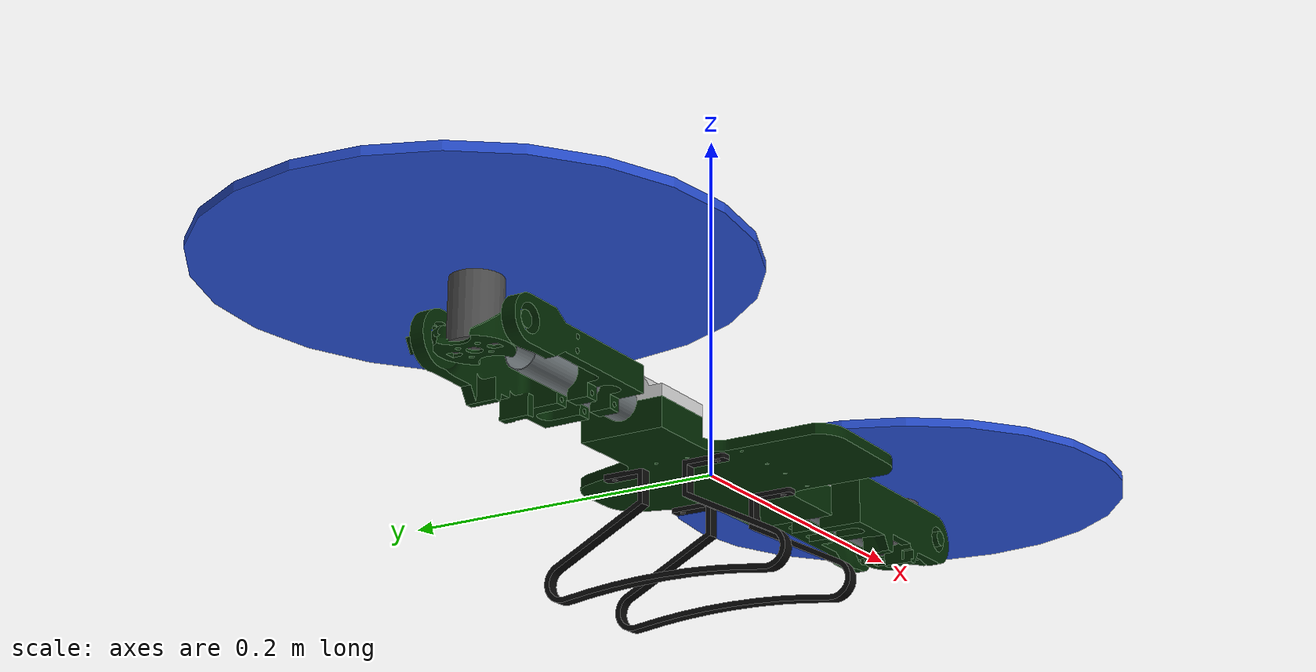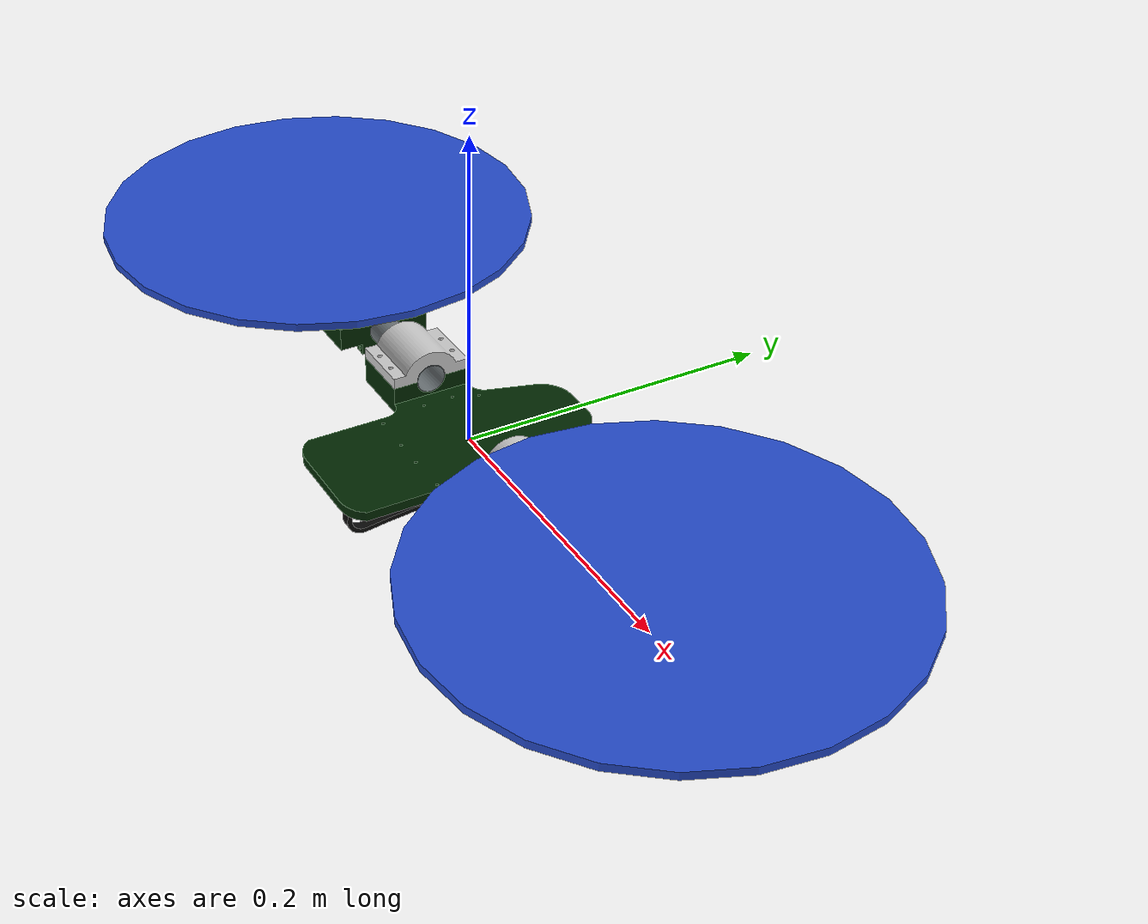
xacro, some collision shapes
<?xml version="1.0"?>
<robot name="bicopter" xmlns:xacro="http://ros.org/wiki/xacro">

  <!-- Properties -->
  <xacro:property name="namespace" value="bicopter" />
  <xacro:property name="rotor_velocity_slowdown_sim" value="10" />
  <xacro:property name="mesh_scale" value="1 1 1"/>
  <xacro:property name="mesh" value="propeller"/>  <!-- "propeller" -->
  <xacro:property name="mesh_scale_prop" value=".12 .12 .12"/>
  <xacro:property name="body_width" value="0.3" />
  <xacro:property name="body_height" value="0.17" />
  <xacro:property name="mass_rotor" value="0.005" /> <!-- [kg] -->
  <xacro:property name="arm_length" value="0.17" />
  <xacro:property name="rotor_offset_top" value="0.032" />
  <xacro:property name="radius_rotor" value="0.14" />
  <xacro:property name="motor_constant" value="2.39e-05" /> <!-- [kg.m/s^2] -->
  <xacro:property name="moment_constant" value="0.016" />
  <xacro:property name="time_constant_up" value="0.15" />
  <xacro:property name="time_constant_down" value="0.15" />
  <xacro:property name="max_rot_velocity" value="770" /> <!-- [rad/s] -->
  <xacro:property name="rotor_drag_coefficient" value="1.3858e-06" />
  <xacro:property name="rolling_moment_coefficient" value="0.000001" />
  <xacro:property name="color" value="DarkGrey" />

  <!-- Included URDF Files -->
  <xacro:include filename="$(find bicopter_sim)/bicopter_description/urdf/structure_base.xacro" />

   <!-- inertia of a single rotor, assuming it is a cuboid. Height=3mm, width=15mm -->
  <xacro:property name="rotor_inertia">
    <inertia
    ixx="${1/12 * mass_rotor * (0.015 * 0.015 + 0.003 * 0.003) * rotor_velocity_slowdown_sim}"
    iyy="${1/12 * mass_rotor * (4 * radius_rotor * radius_rotor + 0.003 * 0.003) * rotor_velocity_slowdown_sim}"
    izz="${1/12 * mass_rotor * (4 * radius_rotor * radius_rotor + 0.015 * 0.015) * rotor_velocity_slowdown_sim}"
    ixy="0.0" ixz="0.0"  iyz="0.0" /> <!-- [kg.m^2] [kg.m^2] [kg.m^2] [kg.m^2] [kg.m^2] [kg.m^2] -->

  </xacro:property>

  <xacro:bicopter_base robot_namespace="${namespace}" />

   <!-- CRIACAO DOS MANCAIS E SUAS JUNTAS (JOINTS) -->

  <xacro:mancal prefix="right" reflect="-1" />
  <xacro:mancal prefix="left" reflect="1" />

  <!-- CRIACAO DOS TUBE ARM E SUAS JUNTAS (JOINTS) -->

  <xacro:tube_arm prefix="right" reflect="-1" />
  <xacro:tube_arm prefix="left" reflect="1" />

  <!-- CRIACAO DOS ARM E SUAS JUNTAS (JOINTS) -->

   <xacro:arm prefix="right" releve="0" reflect="-1" />
   <xacro:arm prefix="left" releve="1" reflect="1" />

  <!-- CRIACAO DOS ARM2 E SUAS JUNTAS (JOINTS) -->

   <xacro:arm2 prefix="right" releve="0" reflect="-1" />
   <xacro:arm2 prefix="left" releve="1" reflect="1" />

   <!-- CRIACAO DOS LEG E SUAS JUNTAS (JOINTS) -->

   <xacro:leg prefix="right" reflect="-1" />
   <xacro:leg prefix="left" reflect="1" />

   <!-- CRIACAO DOS TILT E SUAS JUNTAS (JOINTS) -->

   <xacro:tilt prefix="right" reflect="-1" />
   <xacro:tilt prefix="left" reflect="1" />

   <!-- CRIACAO DOS STATOR E SUAS JUNTAS (JOINTS) -->

   <xacro:stator prefix="right" reflect="-1" parent="right_tilt"/>
   <xacro:stator prefix="left"  reflect="1" parent="left_tilt" />

   <!-- CRIACAO DOS ROTORES -->

  <xacro:vertical_rotor
    robot_namespace="${namespace}"
    suffix="front"
    direction="ccw"
    motor_constant="${motor_constant}"
    moment_constant="${moment_constant}"
    parent="left_tilt"
    mass_rotor="${mass_rotor}"
    radius_rotor="${radius_rotor}"
    time_constant_up="${time_constant_up}"
    time_constant_down="${time_constant_down}"
    max_rot_velocity="${max_rot_velocity}"
    motor_number="0"
    rotor_drag_coefficient="${rotor_drag_coefficient}"
    rolling_moment_coefficient="${rolling_moment_coefficient}"
    mesh ="propeller"
    mesh_scale="${mesh_scale_prop}"
    color="Blue">
    <origin xyz="0 0 ${rotor_offset_top}" rpy="0 0 0" />
    <xacro:insert_block name="rotor_inertia" />
  </xacro:vertical_rotor>

  <xacro:vertical_rotor
    robot_namespace="${namespace}"
    suffix="front"
    direction="cw"
    motor_constant="${motor_constant}"
    moment_constant="${moment_constant}"
    parent="right_tilt"
    mass_rotor="${mass_rotor}"
    radius_rotor="${radius_rotor}"
    time_constant_up="${time_constant_up}"
    time_constant_down="${time_constant_down}"
    max_rot_velocity="${max_rot_velocity}"
    motor_number="1"
    rotor_drag_coefficient="${rotor_drag_coefficient}"
    rolling_moment_coefficient="${rolling_moment_coefficient}"
    mesh ="propeller"
    mesh_scale="${mesh_scale_prop}"
    color="Blue">
    <origin xyz="0 0 ${rotor_offset_top}" rpy="0 0 0" />
    <xacro:insert_block name="rotor_inertia" />
  </xacro:vertical_rotor>

	   <!-- CONECTANDO ROS TO GAZEBO -->

  <gazebo>
    <plugin name="gazebo_ros_control" filename="libgazebo_ros_control.so">
     <robotNamespace>/</robotNamespace>
	   </plugin>
   </gazebo>

 </robot>

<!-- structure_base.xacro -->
<robot xmlns:xacro="http://ros.org/wiki/xacro">

  <xacro:property name="pi" value="3.1415" />
   <material name="blue">
    <color rgba="0 0 0.8 1"/>
  </material>

  <!-- MACRO PARA CRIACAO DO DEFAULT INERTIAL -->

  <xacro:macro name="default_inertial" params="mass ixx ixy ixz iyy iyz izz">
    <inertial>
      <mass value="${mass}" />
      <inertia ixx="${ixx}" ixy="${ixy}" ixz="${ixz}" iyy="${iyy}" iyz="${iyz}" izz="${izz}" />
    </inertial>
  </xacro:macro>

  <!-- MACRO PARA CRIACAO DA BASE DO BICOPTER -->
  <xacro:macro name="bicopter_base" params="robot_namespace">
  <link name="base_link">
  </link>

  <joint name="base_joint" type="fixed">
    <parent link="base_link"/>
    <child link="base_link_inertial"/>
  </joint>

  <link name="base_link_inertial">

    <visual>
      <origin rpy="0 0 0" xyz="0 0 0"/>
      <geometry>
        <mesh filename="package://bicopter_sim/bicopter_description/meshes/middle.dae"/>
      </geometry>
    </visual>

    <collision>
      <origin rpy="0 0 0" xyz="0 0 0"/>
      <geometry>
        <box size="0.178 0.17 0.015"/>
      </geometry>
    </collision>

    <xacro:default_inertial mass="0.1419" ixx="0.1942e-6" ixy="0" ixz="0" iyy="0.3362e-6" iyz="-0.0021e-6" izz="0.5259e-6"/>

  </link>

  <!-- attach multirotor_base_plugin to the base_link -->
  <gazebo>
    <plugin filename="librotors_gazebo_multirotor_base_plugin.so" name="rosbag">
      <robotNamespace>${robot_namespace}</robotNamespace>
        <linkName>base_link</linkName>
        <rotorVelocitySlowdownSim>${rotor_velocity_slowdown_sim}</rotorVelocitySlowdownSim>
    </plugin>
  </gazebo>

  </xacro:macro>

  <!-- MACRO PARA CRIACAO DO MANCAL -->
  <xacro:macro name="mancal" params="prefix reflect">
    <link name="${prefix}_mancal">
      <visual>
        <geometry>
         <mesh filename="package://bicopter_sim/bicopter_description/meshes/mancal_up.dae"/>
        </geometry>
        <origin rpy="0 0 ${pi/2}" xyz="0 0 0"/>
      </visual>
      <collision>
        <geometry>
          <box size="0.04 0.05 0.02"/>
        </geometry>
        <origin rpy="0 0 0" xyz="0 0 0.010"/>
      </collision>
      <xacro:default_inertial mass="0.01971" ixx="3.0541067e-09" ixy="-1.22135e-11" ixz="2.8446e-12" iyy="3.361632324e-07" iyz="-2.06933e-09" izz="5.258915527e-07"/>
    </link>

    <joint name="base_to_${prefix}_mancal" type="fixed">
      <parent link="base_link"/>
      <child link="${prefix}_mancal"/>
      <origin xyz="${reflect*0.07} 0 0.0142" />
    </joint>
  </xacro:macro>

  <!-- MACRO PARA CRIACAO DO TUBE ARM -->

  <xacro:macro name="tube_arm" params="prefix reflect">
    <link name="${prefix}_tube_arm">
      <visual>
        <geometry>
         <mesh filename="package://bicopter_sim/bicopter_description/meshes/tube_arm.dae"/>
        </geometry>
        <origin rpy="0 0 0" xyz="0 0 0"/>
      </visual>
      <collision>
      <geometry>
        <cylinder length="0.12" radius="0.01"/>
      </geometry>
       <origin rpy="0 ${pi/2} 0" xyz="0 0 0"/>
    </collision>
      <xacro:default_inertial mass="0.03022" ixx="1.7960983e-09" ixy="-2.3981262e-09" ixz="-2.08e-14" iyy="2.15995621e-08" iyz="-7.0e-16" izz="2.17520676e-08"/>
    </link>

    <joint name="base_to_${prefix}_tube_arm" type="fixed">
      <parent link="base_link"/>
      <child link="${prefix}_tube_arm"/>
      <origin xyz="${reflect*0.115} 0 0.0142" />
    </joint>
  </xacro:macro>

  <!-- MACRO PARA CRIACAO DO ARM -->

   <xacro:macro name="arm" params="prefix releve reflect">

    <link name="${prefix}_arm">
      <visual>
        <geometry>
         <mesh filename="package://bicopter_sim/bicopter_description/meshes/arm_max.dae"/>
        </geometry>
        <origin rpy="${releve*pi} ${releve*pi} 0" xyz="0 0 0"/>
      </visual>
      <collision>
        <geometry>
          <box size="0.12 0.006 0.038"/>
        </geometry>
        <origin rpy="0 0 0" xyz="${reflect*-0.04} ${reflect*-0.005} -0.005"/>
      </collision>
      <xacro:default_inertial mass="0.03133" ixx="4.021067e-09" ixy="2.7460985e-09" ixz="-1.840184e-10" iyy="3.54965027e-08" iyz="-7.66613e-11" izz="3.39598694e-08"/>
    </link>

    <joint name="base_to_${prefix}_arm" type="fixed">
      <parent link="${prefix}_tube_arm"/>
      <child link="${prefix}_arm"/>
      <origin xyz="${reflect*0.1} ${reflect*-0.022} 0"/>
    </joint>

  </xacro:macro>

  <!-- MACRO PARA CRIACAO DO ARM2 -->

   <xacro:macro name="arm2" params="prefix releve reflect">

    <link name="${prefix}_arm2">
      <visual>
        <geometry>
         <mesh filename="package://bicopter_sim/bicopter_description/meshes/arm_min.dae"/>
        </geometry>
        <origin rpy="${releve*pi} ${releve*pi} 0" xyz="0 0 0"/>
      </visual>
      <collision>
        <geometry>
          <box size="0.11 0.007 0.035"/>
        </geometry>
        <origin rpy="0 0 0" xyz="${reflect*-0.045} ${reflect*-0.005} -0.001"/>
      </collision>
      <xacro:default_inertial mass="0.01847" ixx="3.201813e-10" ixy="0.00" ixz="0.00" iyy="5.4531342e-09" iyz="0.00" izz="5.4531342e-09"/>
    </link>

    <joint name="base_to_${prefix}_arm2" type="fixed">
      <parent link="${prefix}_tube_arm"/>
      <child link="${prefix}_arm2"/>
      <origin xyz="${reflect*0.1} ${reflect*0.03} 0"/>
    </joint>

  </xacro:macro>

   <!-- MACRO PARA CRIACAO DO LEG -->

   <xacro:macro name="leg" params="prefix reflect">

    <link name="${prefix}_leg">
      <visual>
        <geometry>
         <mesh filename="package://bicopter_sim/bicopter_description/meshes/land_leg.dae"/>
        </geometry>
        <origin rpy="0 0 0" xyz="0 0 0"/>
      </visual>
      <collision>
        <geometry>
         <box size="0.007 0.155 0.07"/>
        </geometry>
        <origin rpy="0 0 0" xyz="0 0 -0.035"/>
      </collision>
      <xacro:default_inertial mass="0.00823" ixx="1.91376434e-08" ixy="7.0e-16" ixz="-2.0e-16" iyy="4.2566975e-09" iyz="-1.0e-15" izz="1.49469467e-08"/>
    </link>

    <joint name="base_to_${prefix}_leg" type="fixed">
      <parent link="base_link"/>
      <child link="${prefix}_leg"/>
      <origin xyz="${reflect*0.035} 0.0075 -0.0025"/>
    </joint>
    <gazebo reference="${prefix}_leg">
      <mu1 value="200.0"/>
      <mu2 value="100.0"/>
      <kp value="10000000.0" />
      <kd value="1.0" />
    </gazebo>
  </xacro:macro>

   <!-- MACRO PARA CRIACAO DO TILT E SUAS TRANSMISSOES-->

   <xacro:macro name="tilt" params="prefix reflect">

    <link name="${prefix}_tilt">
      <visual>
        <geometry>
         <mesh filename="package://bicopter_sim/bicopter_description/meshes/motor_base.dae"/>
        </geometry>
        <origin rpy="0 0 0" xyz="0 0 0"/>
      </visual>
      <collision>
        <geometry>
          <cylinder length="0.005" radius="0.02"/>
        </geometry>
      <origin rpy="0 0 0" xyz="0 0 -0.01"/>
      </collision>
      <xacro:default_inertial mass="0.00526" ixx="1.8322357e-09" ixy="2.628e-13" ixz="4.879e-13" iyy="3.454043e-10" iyz="-2.906790e-11" izz="1.9750971e-09"/>
    </link>

    <joint name="arm_to_${prefix}_tilt" type="revolute">
      <axis xyz="0 ${reflect*1} 0"/>
      <limit effort="1000.0" lower="0.0" upper="${pi/2}" velocity="0.5"/>
      <origin rpy="0 0 0" xyz="0 ${reflect*0.02} 0"/>
      <parent link="${prefix}_arm"/>
      <child link="${prefix}_tilt"/>
      <origin xyz="${reflect*0.035} ${reflect*0.0075} -0.0025"/>
    </joint>

     <!-- This block connects the tilt_rotor joint to an actuator (motor), which informs both
  simulation and visualization of the robot -->

    <transmission name="${prefix}_tilt_trans" type="SimpleTransmission">
      <type>transmission_interface/SimpleTransmission</type>
      <actuator name="${prefix}_tilt_motor">
        <mechanicalReduction>1</mechanicalReduction>
      </actuator>
      <joint name="arm_to_${prefix}_tilt">
        <hardwareInterface>hardware_interface/PositionJointInterface</hardwareInterface>
      </joint>
    </transmission>

  </xacro:macro>

  <!-- MACRO PARA CRIACAO DO ESTATOR -->

   <xacro:macro name="stator" params="prefix reflect parent">

    <link name="${prefix}_stator">
      <visual>
        <geometry>
         <cylinder length="0.035" radius="0.014"/>
        </geometry>
        <origin rpy="0 0 0" xyz="0 0 0.009"/>
      </visual>
      <collision>
        <geometry>
         <cylinder length="0.035" radius="0.014"/>
        </geometry>
        <origin rpy="0 0 0" xyz="0 0 0.011"/>
      </collision>
      <xacro:default_inertial mass="0.053" ixx="${(1/12)*0.053*(3*0.014*0.014+0.035*0.035)}" ixy="0.00" ixz="0.00" iyy="${(1/12)*0.053*(3*0.014*0.014+0.035*0.035)}" iyz="0.00" izz="${(1/2)*0.053*(0.014*0.014)}"/>
    </link>

    <joint name="tilt_to_${prefix}_estator" type="fixed">
      <axis xyz="0 0 0"/>
      <limit effort="1000.0" lower="0.0" upper="0.00" velocity="0.5"/>
      <parent link="${parent}"/>
      <child link="${prefix}_stator"/>
    </joint>
    <gazebo reference="${prefix}_stator">
      <material>Gazebo/${color}</material>
    </gazebo>

  </xacro:macro>

  <!--MACRO PARA CRIACAO DO ROTOR -->

  <!-- Rotor joint and link -->
  <xacro:macro name="vertical_rotor"
    params="robot_namespace suffix direction motor_constant moment_constant parent mass_rotor radius_rotor time_constant_up time_constant_down max_rot_velocity motor_number rotor_drag_coefficient rolling_moment_coefficient color mesh mesh_scale *origin *inertia">
    <joint name="rotor_${motor_number}_joint" type="continuous">
      <xacro:insert_block name="origin" />
      <axis xyz="0 0 1" />
      <!-- TODO(ff): not currently set because it's not yet supported -->
      <parent link="${parent}" />
      <child link="rotor_${motor_number}" />

    </joint>
    <!-- TODO(ff): not currently set because it's not yet supported -->
    <link name="rotor_${motor_number}">
      <inertial>
        <mass value="${mass_rotor}" /> <!-- [kg] -->
        <xacro:insert_block name="inertia" />
      </inertial>
      <visual>
        <geometry>

          <mesh filename="package://bicopter_sim/bicopter_description/meshes/${mesh}_${direction}.dae"
            scale="${mesh_scale}" />
        </geometry>
      </visual>
      <collision>
        <geometry>
          <cylinder length="0.005" radius="${radius_rotor}" />
        </geometry>
      </collision>
    </link>
    <gazebo>
      <plugin name="${suffix}_motor_model" filename="librotors_gazebo_motor_model.so">
        <robotNamespace>${robot_namespace}</robotNamespace>
        <jointName>rotor_${motor_number}_joint</jointName>
        <linkName>rotor_${motor_number}</linkName>
        <turningDirection>${direction}</turningDirection>
        <timeConstantUp>${time_constant_up}</timeConstantUp>
        <timeConstantDown>${time_constant_down}</timeConstantDown>
        <maxRotVelocity>${max_rot_velocity}</maxRotVelocity>
        <motorConstant>${motor_constant}</motorConstant>
        <momentConstant>${moment_constant}</momentConstant>
        <commandSubTopic>gazebo/command/motor_speed</commandSubTopic>
        <motorNumber>${motor_number}</motorNumber>
        <rotorDragCoefficient>${rotor_drag_coefficient}</rotorDragCoefficient>
        <rollingMomentCoefficient>${rolling_moment_coefficient}</rollingMomentCoefficient>
        <motorSpeedPubTopic>motor_speed/${motor_number}</motorSpeedPubTopic>
        <rotorVelocitySlowdownSim>${rotor_velocity_slowdown_sim}</rotorVelocitySlowdownSim>
      </plugin>
    </gazebo>
    <gazebo reference="rotor_${motor_number}">
      <material>Gazebo/${color}</material>
    </gazebo>
  </xacro:macro>

 </robot>
